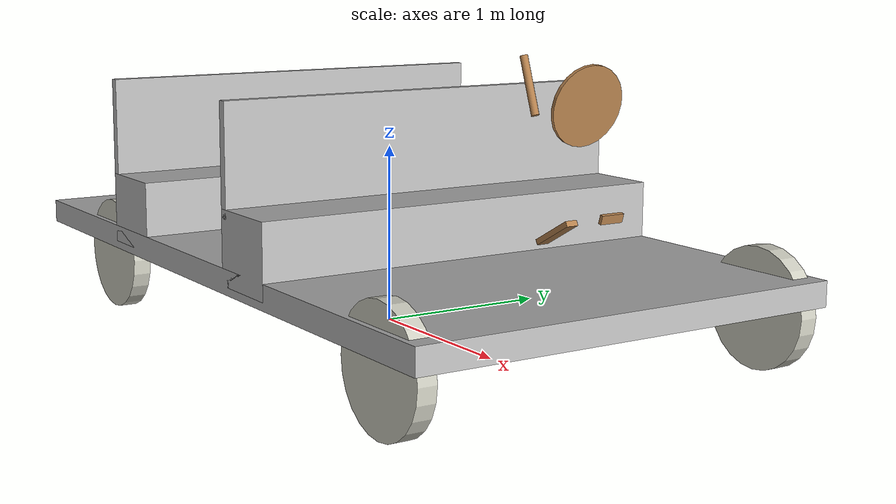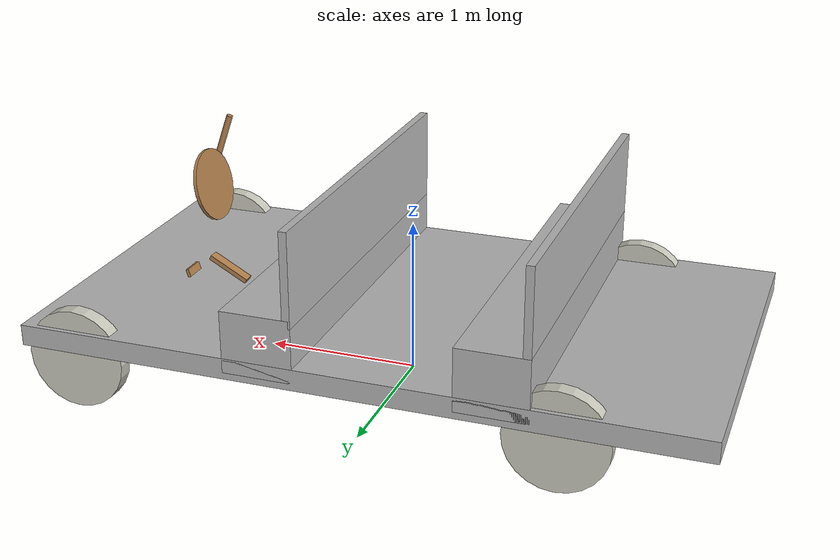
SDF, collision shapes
<?xml version="1.0" ?>
<sdf version="1.4">
  <model name='golf_cart'>
    <link name='chassis'>
      <!-- mesh width 51.1811 -->
      <!-- mesh height 99.8878 -->
      <!-- mesh origin at corner -->
      <inertial>
        <mass>840</mass>
        <pose>0 0 0 0 0 0</pose>
        <inertia>
          <ixx>160</ixx>
          <ixy>0</ixy>
          <ixz>0</ixz>
          <iyy>630</iyy>
          <iyz>0</iyz>
          <izz>630</izz>
        </inertia>
      </inertial>

      <visual name='chassis_visual'>
        <pose>-2.28 -1.18 0.200000 0.000000 -0.000000 -1.57079</pose>
        <geometry>
          <mesh>
            <uri>model://golf_cart/meshes/no_wheels.dae</uri>
            <scale>0.045 0.045 0.045</scale>
          </mesh>
        </geometry>
      </visual>

      <collision name='chassis_base_col'>
        <pose>0.0 0.0 0.425000 0.000000 0 0</pose>
        <geometry>
          <box>
            <size>4.3 2.4 0.135</size>
          </box>
        </geometry>
        <surface>
          <contact>
            <ode>
              <max_vel>1</max_vel>
              <min_depth>0.01</min_depth>
            </ode>
          </contact>
        </surface>
      </collision>

      <collision name='chassis_seat_col'>
        <pose>0.55 0.0 0.60000 0.000000 0 0</pose>
        <geometry>
          <box>
            <size>0.45 2.4 0.4</size>
          </box>
        </geometry>
        <surface>
          <contact>
            <ode>
              <max_vel>0</max_vel>
              <min_depth>0.10</min_depth>
            </ode>
          </contact>
        </surface>
      </collision>

      <collision name='chassis_seat_back_col'>
        <pose>0.35 0.0 1.05000 0.000000 0 0</pose>
        <geometry>
          <box>
            <size>0.05 2.4 0.6</size>
          </box>
        </geometry>
      </collision>

      <collision name='chassis_back_seat_col'>
        <pose>-0.88 0.0 0.60000 0.000000 0 0</pose>
        <geometry>
          <box>
            <size>0.45 2.4 0.4</size>
          </box>
        </geometry>
      </collision>

      <collision name='chassis_back_seat_back_col'>
        <pose>-1.08 0.0 1.05000 0.000000 0 0</pose>
        <geometry>
          <box>
            <size>0.05 2.4 0.6</size>
          </box>
        </geometry>
      </collision>

      <velocity_decay>0.01</velocity_decay>
    </link>

    <link name='front_left_wheel_steering_block'>
      <pose>1.800000 1.017700 0.300000 -0.000000 1.570700 1.570700</pose>
      <inertial>
        <mass>10</mass>
        <pose>0 0 0 0 0 0</pose>
        <inertia>
          <ixx>1</ixx>
          <ixy>0</ixy>
          <ixz>0</ixz>
          <iyy>1</iyy>
          <iyz>0</iyz>
          <izz>1</izz>
        </inertia>
      </inertial>
      <collision name='front_left_wheel_collision'>
        <geometry>
          <cylinder>
            <radius>0.050000</radius>
            <length>0.010000</length>
          </cylinder>
        </geometry>
      </collision>
      <visual name='front_left_wheel_visual'>
        <geometry>
          <cylinder>
            <radius>0.050000</radius>
            <length>0.010000</length>
          </cylinder>
        </geometry>
        <material>
          <script>
            <uri>file://media/materials/scripts/gazebo.material</uri>
            <name>Gazebo/Black</name>
          </script>
        </material>
      </visual>
      <velocity_decay/>
    </link>
    <link name='front_left_wheel'>
      <pose>1.800000 1.117700 0.300000 -0.000000 1.570700 1.570700</pose>
      <inertial>
        <mass>10</mass>
        <pose>0 0 0 0 0 0</pose>
        <inertia>
          <ixx>1</ixx>
          <ixy>0</ixy>
          <ixz>0</ixz>
          <iyy>1</iyy>
          <iyz>0</iyz>
          <izz>1</izz>
        </inertia>
      </inertial>
      <collision name='front_left_wheel_collision'>
        <geometry>
          <cylinder>
            <radius>0.320000</radius>
            <length>0.100000</length>
          </cylinder>
        </geometry>
      </collision>
      <visual name='front_left_wheel_visual'>
        <geometry>
          <cylinder>
            <radius>0.320000</radius>
            <length>0.100000</length>
          </cylinder>
        </geometry>
        <material>
          <script>
            <uri>file://media/materials/scripts/gazebo.material</uri>
            <name>Gazebo/PaintedWall</name>
          </script>
        </material>
      </visual>
      <velocity_decay/>
    </link>

    <link name='front_right_wheel_steering_block'>
      <pose>1.800000 -1.017700 0.300000 -0.000000 1.570700 1.570700</pose>
      <inertial>
        <mass>10</mass>
        <pose>0 0 0 0 0 0</pose>
        <inertia>
          <ixx>1</ixx>
          <ixy>0</ixy>
          <ixz>0</ixz>
          <iyy>1</iyy>
          <iyz>0</iyz>
          <izz>1</izz>
        </inertia>
      </inertial>
      <collision name='front_right_wheel_collision'>
        <geometry>
          <cylinder>
            <radius>0.050000</radius>
            <length>0.010000</length>
          </cylinder>
        </geometry>
      </collision>
      <visual name='front_right_wheel_visual'>
        <geometry>
          <cylinder>
            <radius>0.050000</radius>
            <length>0.010000</length>
          </cylinder>
        </geometry>
        <material>
          <script>
            <uri>file://media/materials/scripts/gazebo.material</uri>
            <name>Gazebo/Black</name>
          </script>
        </material>
      </visual>
      <velocity_decay/>
    </link>
    <link name='front_right_wheel'>
      <pose>1.800000 -1.117700 0.300000 -0.000000 1.570700 1.570700</pose>
      <inertial>
        <mass>10</mass>
        <pose>0 0 0 0 0 0</pose>
        <inertia>
          <ixx>1</ixx>
          <ixy>0</ixy>
          <ixz>0</ixz>
          <iyy>1</iyy>
          <iyz>0</iyz>
          <izz>1</izz>
        </inertia>
      </inertial>
      <collision name='front_right_wheel_collision'>
        <geometry>
          <cylinder>
            <radius>0.320000</radius>
            <length>0.100000</length>
          </cylinder>
        </geometry>
      </collision>
      <visual name='front_right_wheel_visual'>
        <geometry>
          <cylinder>
            <radius>0.320000</radius>
            <length>0.100000</length>
          </cylinder>
        </geometry>
        <material>
          <script>
            <uri>file://media/materials/scripts/gazebo.material</uri>
            <name>Gazebo/PaintedWall</name>
          </script>
        </material>
      </visual>
      <velocity_decay/>
    </link>

    <link name='back_right_wheel'>
      <pose>-1.250000 -1.117700 0.300000 -0.000000 1.570700 1.570700</pose>
      <inertial>
        <mass>10</mass>
        <pose>0 0 0 0 0 0</pose>
        <inertia>
          <ixx>1</ixx>
          <ixy>0</ixy>
          <ixz>0</ixz>
          <iyy>1</iyy>
          <iyz>0</iyz>
          <izz>1</izz>
        </inertia>
      </inertial>
      <collision name='back_right_wheel_collision'>
        <geometry>
          <cylinder>
            <radius>0.320000</radius>
            <length>0.100000</length>
          </cylinder>
        </geometry>
      </collision>
      <visual name='back_right_wheel_visual'>
        <geometry>
          <cylinder>
            <radius>0.320000</radius>
            <length>0.100000</length>
          </cylinder>
        </geometry>
        <material>
          <script>
            <uri>file://media/materials/scripts/gazebo.material</uri>
            <name>Gazebo/PaintedWall</name>
          </script>
        </material>
      </visual>
      <velocity_decay/>
    </link>
    <link name='back_left_wheel'>
      <pose>-1.250000 1.117700 0.300000 -0.000000 1.570700 1.570700</pose>
      <inertial>
        <mass>10</mass>
        <pose>0 0 0 0 0 0</pose>
        <inertia>
          <ixx>1</ixx>
          <ixy>0</ixy>
          <ixz>0</ixz>
          <iyy>1</iyy>
          <iyz>0</iyz>
          <izz>1</izz>
        </inertia>
      </inertial>
      <collision name='back_left_wheel_collision'>
        <geometry>
          <cylinder>
            <radius>0.320000</radius>
            <length>0.100000</length>
          </cylinder>
        </geometry>
      </collision>
      <visual name='back_left_wheel_visual'>
        <geometry>
          <cylinder>
            <radius>0.320000</radius>
            <length>0.100000</length>
          </cylinder>
        </geometry>
        <material>
          <script>
            <uri>file://media/materials/scripts/gazebo.material</uri>
            <name>Gazebo/PaintedWall</name>
          </script>
        </material>
      </visual>
      <velocity_decay/>
    </link>

    <link name='gas_pedal'>
      <pose>1.150000 0.300000 0.660000 0.000000 -0.5 0.000000</pose>
      <gravity>false</gravity>
      <inertial>
        <mass>1.0</mass>
        <pose>0 0 0 0 0 0</pose>
        <inertia>
          <ixx>0.01</ixx>
          <ixy>0</ixy>
          <ixz>0</ixz>
          <iyy>0.01</iyy>
          <iyz>0</iyz>
          <izz>0.01</izz>
        </inertia>
      </inertial>
      <collision name='gas_pedal_collision'>
        <geometry>
          <box>
            <size>0.280000 0.070000 0.030000</size>
          </box>
        </geometry>
      </collision>
      <visual name='gas_pedal_visual'>
        <geometry>
          <box>
            <size>0.280000 0.070000 0.030000</size>
          </box>
        </geometry>
        <material>
          <script>
            <uri>file://media/materials/scripts/gazebo.material</uri>
            <name>Gazebo/Wood</name>
          </script>
          <ambient>0.2 0.2 0.2 1</ambient>
          <diffuse>0.2 0.2 0.2 1</diffuse>
          <specular>0.2 0.2 0.2 1</specular>
          <emissive>0.5 0.5 0.5 1</emissive>
        </material>
      </visual>
      <velocity_decay/>
    </link>

    <link name='brake_pedal'>
      <gravity>false</gravity>
      <pose>1.280000 0.550000 0.730000 0.000000 0.300000 0.000000</pose>
      <inertial>
        <mass>1</mass>
        <pose>0 0 0 0 0 0</pose>
        <inertia>
          <ixx>0.01</ixx>
          <ixy>0</ixy>
          <ixz>0</ixz>
          <iyy>0.01</iyy>
          <iyz>0</iyz>
          <izz>0.01</izz>
        </inertia>
      </inertial>
      <collision name='brake_pedal_collision'>
        <geometry>
          <box>
            <size>0.020000 0.140000 0.050000</size>
          </box>
        </geometry>
      </collision>
      <visual name='brake_pedal_visual'>
        <geometry>
          <box>
            <size>0.020000 0.140000 0.050000</size>
          </box>
        </geometry>
        <material>
          <script>
            <uri>file://media/materials/scripts/gazebo.material</uri>
            <name>Gazebo/Wood</name>
          </script>
          <ambient>0.2 0.2 0.2 1</ambient>
          <diffuse>0.2 0.2 0.2 1</diffuse>
          <specular>0.2 0.2 0.2 1</specular>
          <emissive>0.5 0.5 0.5 1</emissive>
        </material>
      </visual>
      <velocity_decay/>
    </link>

    <link name='steering_wheel'>
      <pose>1.130000 0.4950000 1.300000 0.000000 1.8 0.000000</pose>
      <inertial>
        <mass>1.0</mass>
        <pose>0 0 0 0 0 0</pose>
        <inertia>
          <ixx>0.1</ixx>
          <ixy>0</ixy>
          <ixz>0</ixz>
          <iyy>0.1</iyy>
          <iyz>0</iyz>
          <izz>0.1</izz>
        </inertia>
      </inertial>
      <collision name='steering_wheel_collision'>
        <geometry>
          <cylinder>
            <radius>0.220000</radius>
            <length>0.020000</length>
          </cylinder>
        </geometry>
      </collision>
      <visual name='steering_wheel_visual'>
        <geometry>
          <cylinder>
            <radius>0.220000</radius>
            <length>0.020000</length>
          </cylinder>
        </geometry>
        <material>
          <script>
            <uri>file://media/materials/scripts/gazebo.material</uri>
            <name>Gazebo/Wood</name>
          </script>
          <ambient>0.2 0.2 0.2 1</ambient>
          <diffuse>0.2 0.2 0.2 1</diffuse>
          <specular>0.2 0.2 0.2 1</specular>
          <emissive>0.5 0.5 0.5 1</emissive>
        </material>
      </visual>
      <velocity_decay>0.1</velocity_decay>
    </link>
    <link name='hand_brake'>
      <pose>1.35 0.0 1.300000 0.000000 2.8 0.000000</pose>
      <inertial>
        <mass>1.0</mass>
        <pose>0 0 -0.15 0 0 0</pose>
        <inertia>
          <ixx>0.1</ixx>
          <ixy>0</ixy>
          <ixz>0</ixz>
          <iyy>0.1</iyy>
          <iyz>0</iyz>
          <izz>0.1</izz>
        </inertia>
      </inertial>
      <collision name="hand_brake_collision">
        <pose>0 0 -0.15 0 0 0</pose>
        <geometry>
          <cylinder>
            <radius>0.02</radius>
            <length>0.3</length>
          </cylinder>
        </geometry>
      </collision>
      <visual name="hand_brake_visual">
        <pose>0 0 -0.15 0 0 0</pose>
        <geometry>
          <cylinder>
            <radius>0.02</radius>
            <length>0.3</length>
          </cylinder>
        </geometry>
        <material>
          <script>
            <uri>file://media/materials/scripts/gazebo.material</uri>
            <name>Gazebo/Wood</name>
          </script>
        </material>
      </visual>
    </link>
    <joint name='gas_joint' type='prismatic'>
      <parent>chassis</parent>
      <child>gas_pedal</child>
      <axis>
        <xyz>1.000000 0.000000 -1.000000</xyz>
        <limit>
          <lower>0.000000</lower>
          <upper>0.090000</upper>
        </limit>
      </axis>
    </joint>
    <joint name='brake_joint' type='prismatic'>
      <parent>chassis</parent>
      <child>brake_pedal</child>
      <axis>
        <xyz>1.000000 0.000000 -0.600000</xyz>
        <limit>
          <lower>0.000000</lower>
          <upper>0.100000</upper>
        </limit>
      </axis>
    </joint>
    <joint name='steering_joint' type='revolute'>
      <parent>chassis</parent>
      <child>steering_wheel</child>
      <axis>
        <xyz>-4.286262 0.000000 1.000000</xyz>
        <limit>
          <lower>-7.853000</lower>
          <upper>7.853000</upper>
        </limit>
      </axis>
    </joint>
    <joint name='hand_brake_joint' type='revolute'>
      <parent>chassis</parent>
      <child>hand_brake</child>
      <axis>
        <xyz>0.0 -1.0 0.0</xyz>
        <limit>
          <lower>0</lower>
          <upper>1</upper>
        </limit>
      </axis>
    </joint>

    <joint name='front_right_steering_joint' type='revolute'>
      <parent>chassis</parent>
      <child>front_right_wheel_steering_block</child>
      <axis>
        <xyz>0.000000 0.000000 1.000000</xyz>
        <limit>
          <lower>-1.000000</lower>
          <upper>1.000000</upper>
        </limit>
      </axis>
      <physics>
        <ode>
          <limit>
            <cfm>0.000000</cfm>
            <erp>0.900000</erp>
          </limit>
        </ode>
      </physics>
    </joint>

    <joint name='front_left_steering_joint' type='revolute'>
      <parent>chassis</parent>
      <child>front_left_wheel_steering_block</child>
      <axis>
        <xyz>0.000000 0.000000 1.000000</xyz>
        <limit>
          <lower>-1.000000</lower>
          <upper>1.000000</upper>
        </limit>
      </axis>
      <physics>
        <ode>
          <limit>
            <cfm>0.000000</cfm>
            <erp>0.900000</erp>
          </limit>
        </ode>
      </physics>
    </joint>

    <joint name='front_left_joint' type='revolute'>
      <parent>front_left_wheel_steering_block</parent>
      <child>front_left_wheel</child>
      <axis>
        <xyz>0.000000 1.000000 0.000000</xyz>
      </axis>
      <physics>
        <ode>
          <limit>
            <cfm>0.000000</cfm>
            <erp>0.900000</erp>
          </limit>
        </ode>
      </physics>
    </joint>

    <joint name='front_right_joint' type='revolute'>
      <parent>front_right_wheel_steering_block</parent>
      <child>front_right_wheel</child>
      <axis>
        <xyz>0.000000 1.000000 0.000000</xyz>
      </axis>
      <physics>
        <ode>
          <limit>
            <cfm>0.000000</cfm>
            <erp>0.900000</erp>
          </limit>
        </ode>
      </physics>
    </joint>
    <joint name='back_right_joint' type='revolute'>
      <parent>chassis</parent>
      <child>back_right_wheel</child>
      <axis>
        <xyz>0.000000 1.000000 0.000000</xyz>
      </axis>
      <physics>
        <ode>
          <limit>
            <cfm>0.000000</cfm>
            <erp>0.900000</erp>
          </limit>
        </ode>
      </physics>
    </joint>
    <joint name='back_left_joint' type='revolute'>
      <parent>chassis</parent>
      <child>back_left_wheel</child>
      <axis>
        <xyz>0.000000 1.000000 0.000000</xyz>
      </axis>
      <physics>
        <ode>
          <limit>
            <cfm>0.000000</cfm>
            <erp>0.900000</erp>
          </limit>
        </ode>
      </physics>
    </joint>
    <plugin name='vehicle' filename='libDRCVehicleROSPlugin.so'>
      <front_left_wheel>front_left_joint</front_left_wheel>
      <front_right_wheel>front_right_joint</front_right_wheel>
      <front_left_wheel_steering>front_left_steering_joint</front_left_wheel_steering>
      <front_right_wheel_steering>front_right_steering_joint</front_right_wheel_steering>
      <back_left_wheel>back_left_joint</back_left_wheel>
      <back_right_wheel>back_right_joint</back_right_wheel>
      <gas_pedal>gas_joint</gas_pedal>
      <brake_pedal>brake_joint</brake_pedal>
      <steering_wheel>steering_joint</steering_wheel>
      <hand_brake>hand_brake_joint</hand_brake>
      <front_torque>0</front_torque>
      <back_torque>2000</back_torque>
      <front_brake_torque>2000</front_brake_torque>
      <back_brake_torque>2000</back_brake_torque>
      <tire_angle_range>0.5</tire_angle_range>
      <max_speed>10</max_speed>
      <aero_load>0.1</aero_load>
    </plugin>
  </model>
</sdf>
